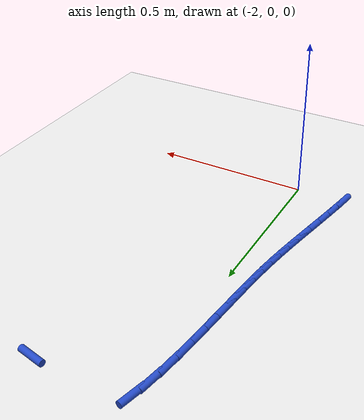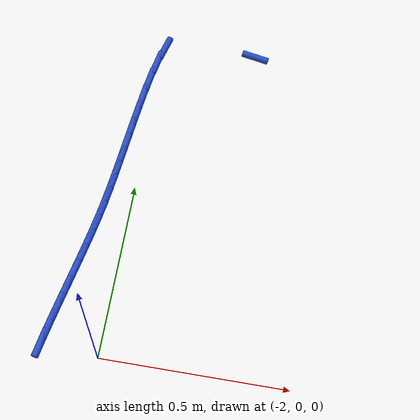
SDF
<sdf version="1.6">
 <world name="default">
  <model name="ground_plane">
   <static>1</static>
   <link name="link">
    <collision name="collision">
     <geometry><plane><normal>0 0 1</normal><size>100 100</size></plane></geometry>
     <surface><friction><ode><mu>100</mu><mu2>50</mu2></ode></friction></surface>
    </collision>
    <visual name="visual">
     <cast_shadows>0</cast_shadows>
     <geometry><plane><normal>0 0 1</normal><size>100 100</size></plane></geometry>
     <material>
      <script><uri>file://media/materials/scripts/gazebo.material</uri><name>Gazebo/WhiteGlow</name></script>
     </material>
    </visual>
   </link>
  </model>
  <model name="line">
   <link name="link_53">
    <pose>-1.7235238032963967 0.9941108134466412 0.01 0 1.57 -0.2016561543358557</pose>
    <collision name="collision">
     <geometry><cylinder><radius>0.01</radius><length>0.08</length></cylinder></geometry>
    </collision>
    <visual name="visual">
     <material>
      <script><name>Gazebo/Blue</name><uri>file://media/materials/scripts/gazebo.material</uri></script>
     </material>
     <geometry><cylinder><radius>0.01</radius><length>0.08</length></cylinder></geometry>
    </visual>
   </link>
   <link name="link_61">
    <pose>-2.0003115646295058 0.9791297774799423 0.01 0 1.57 1.3221051690939472</pose>
    <collision name="collision">
     <geometry><cylinder><radius>0.01</radius><length>0.08</length></cylinder></geometry>
    </collision>
    <visual name="visual">
     <material>
      <script><name>Gazebo/Blue</name><uri>file://media/materials/scripts/gazebo.material</uri></script>
     </material>
     <geometry><cylinder><radius>0.01</radius><length>0.08</length></cylinder></geometry>
    </visual>
   </link>
   <link name="link_62">
    <pose>-2.014659528403973 0.9226302105615845 0.01 0 1.57 1.392190156301244</pose>
    <collision name="collision">
     <geometry><cylinder><radius>0.01</radius><length>0.08</length></cylinder></geometry>
    </collision>
    <visual name="visual">
     <material>
      <script><name>Gazebo/Blue</name><uri>file://media/materials/scripts/gazebo.material</uri></script>
     </material>
     <geometry><cylinder><radius>0.01</radius><length>0.08</length></cylinder></geometry>
    </visual>
   </link>
   <link name="link_63">
    <pose>-2.025857746262438 0.8606005011400883 0.01 0 1.57 1.4341232548136582</pose>
    <collision name="collision">
     <geometry><cylinder><radius>0.01</radius><length>0.08</length></cylinder></geometry>
    </collision>
    <visual name="visual">
     <material>
      <script><name>Gazebo/Blue</name><uri>file://media/materials/scripts/gazebo.material</uri></script>
     </material>
     <geometry><cylinder><radius>0.01</radius><length>0.08</length></cylinder></geometry>
    </visual>
   </link>
   <link name="link_64">
    <pose>-2.034634516862617 0.7967835864212114 0.01 0 1.57 1.4567845629368146</pose>
    <collision name="collision">
     <geometry><cylinder><radius>0.01</radius><length>0.08</length></cylinder></geometry>
    </collision>
    <visual name="visual">
     <material>
      <script><name>Gazebo/Blue</name><uri>file://media/materials/scripts/gazebo.material</uri></script>
     </material>
     <geometry><cylinder><radius>0.01</radius><length>0.08</length></cylinder></geometry>
    </visual>
   </link>
   <link name="link_65">
    <pose>-2.04171813876377 0.7349224025535356 0.01 0 1.57 1.4651222404747108</pose>
    <collision name="collision">
     <geometry><cylinder><radius>0.01</radius><length>0.08</length></cylinder></geometry>
    </collision>
    <visual name="visual">
     <material>
      <script><name>Gazebo/Blue</name><uri>file://media/materials/scripts/gazebo.material</uri></script>
     </material>
     <geometry><cylinder><radius>0.01</radius><length>0.08</length></cylinder></geometry>
    </visual>
   </link>
   <link name="link_66">
    <pose>-2.0477613309545806 0.6779483530487364 0.01 0 1.57 1.4686022576897921</pose>
    <collision name="collision">
     <geometry><cylinder><radius>0.01</radius><length>0.08</length></cylinder></geometry>
    </collision>
    <visual name="visual">
     <material>
      <script><name>Gazebo/Blue</name><uri>file://media/materials/scripts/gazebo.material</uri></script>
     </material>
     <geometry><cylinder><radius>0.01</radius><length>0.08</length></cylinder></geometry>
    </visual>
   </link>
   <link name="link_67">
    <pose>-2.0531243432750554 0.6256524655521167 0.01 0 1.57 1.4688106715112843</pose>
    <collision name="collision">
     <geometry><cylinder><radius>0.01</radius><length>0.08</length></cylinder></geometry>
    </collision>
    <visual name="visual">
     <material>
      <script><name>Gazebo/Blue</name><uri>file://media/materials/scripts/gazebo.material</uri></script>
     </material>
     <geometry><cylinder><radius>0.01</radius><length>0.08</length></cylinder></geometry>
    </visual>
   </link>
   <link name="link_68">
    <pose>-2.058096690854146 0.5770662565587024 0.01 0 1.57 1.464939897385308</pose>
    <collision name="collision">
     <geometry><cylinder><radius>0.01</radius><length>0.08</length></cylinder></geometry>
    </collision>
    <visual name="visual">
     <material>
      <script><name>Gazebo/Blue</name><uri>file://media/materials/scripts/gazebo.material</uri></script>
     </material>
     <geometry><cylinder><radius>0.01</radius><length>0.08</length></cylinder></geometry>
    </visual>
   </link>
   <link name="link_69">
    <pose>-2.0629678888208005 0.5312212425635199 0.01 0 1.57 1.4564952796618205</pose>
    <collision name="collision">
     <geometry><cylinder><radius>0.01</radius><length>0.08</length></cylinder></geometry>
    </collision>
    <visual name="visual">
     <material>
      <script><name>Gazebo/Blue</name><uri>file://media/materials/scripts/gazebo.material</uri></script>
     </material>
     <geometry><cylinder><radius>0.01</radius><length>0.08</length></cylinder></geometry>
    </visual>
   </link>
   <link name="link_70">
    <pose>-2.0680274523039683 0.48714894006159476 0.01 0 1.57 1.4435083546158418</pose>
    <collision name="collision">
     <geometry><cylinder><radius>0.01</radius><length>0.08</length></cylinder></geometry>
    </collision>
    <visual name="visual">
     <material>
      <script><name>Gazebo/Blue</name><uri>file://media/materials/scripts/gazebo.material</uri></script>
     </material>
     <geometry><cylinder><radius>0.01</radius><length>0.08</length></cylinder></geometry>
    </visual>
   </link>
   <link name="link_71">
    <pose>-2.0735648964326003 0.44388086554795286 0.01 0 1.57 1.4266386286954926</pose>
    <collision name="collision">
     <geometry><cylinder><radius>0.01</radius><length>0.08</length></cylinder></geometry>
    </collision>
    <visual name="visual">
     <material>
      <script><name>Gazebo/Blue</name><uri>file://media/materials/scripts/gazebo.material</uri></script>
     </material>
     <geometry><cylinder><radius>0.01</radius><length>0.08</length></cylinder></geometry>
    </visual>
   </link>
   <link name="link_72">
    <pose>-2.0798697363356435 0.4004485355176209 0.01 0 1.57 1.407288552375491</pose>
    <collision name="collision">
     <geometry><cylinder><radius>0.01</radius><length>0.08</length></cylinder></geometry>
    </collision>
    <visual name="visual">
     <material>
      <script><name>Gazebo/Blue</name><uri>file://media/materials/scripts/gazebo.material</uri></script>
     </material>
     <geometry><cylinder><radius>0.01</radius><length>0.08</length></cylinder></geometry>
    </visual>
   </link>
   <link name="link_73">
    <pose>-2.0872170738382554 0.3559139926407003 0.01 0 1.57 1.3903331808201964</pose>
    <collision name="collision">
     <geometry><cylinder><radius>0.01</radius><length>0.08</length></cylinder></geometry>
    </collision>
    <visual name="visual">
     <material>
      <script><name>Gazebo/Blue</name><uri>file://media/materials/scripts/gazebo.material</uri></script>
     </material>
     <geometry><cylinder><radius>0.01</radius><length>0.08</length></cylinder></geometry>
    </visual>
   </link>
   <link name="link_74">
    <pose>-2.095609074090091 0.3099173366975593 0.01 0 1.57 1.3788032745397638</pose>
    <collision name="collision">
     <geometry><cylinder><radius>0.01</radius><length>0.08</length></cylinder></geometry>
    </collision>
    <visual name="visual">
     <material>
      <script><name>Gazebo/Blue</name><uri>file://media/materials/scripts/gazebo.material</uri></script>
     </material>
     <geometry><cylinder><radius>0.01</radius><length>0.08</length></cylinder></geometry>
    </visual>
   </link>
   <link name="link_75">
    <pose>-2.1048040124326817 0.262615205736841 0.01 0 1.57 1.3721897861753036</pose>
    <collision name="collision">
     <geometry><cylinder><radius>0.01</radius><length>0.08</length></cylinder></geometry>
    </collision>
    <visual name="visual">
     <material>
      <script><name>Gazebo/Blue</name><uri>file://media/materials/scripts/gazebo.material</uri></script>
     </material>
     <geometry><cylinder><radius>0.01</radius><length>0.08</length></cylinder></geometry>
    </visual>
   </link>
   <link name="link_76">
    <pose>-2.114551583345038 0.21418241135818591 0.01 0 1.57 1.3700511038913556</pose>
    <collision name="collision">
     <geometry><cylinder><radius>0.01</radius><length>0.08</length></cylinder></geometry>
    </collision>
    <visual name="visual">
     <material>
      <script><name>Gazebo/Blue</name><uri>file://media/materials/scripts/gazebo.material</uri></script>
     </material>
     <geometry><cylinder><radius>0.01</radius><length>0.08</length></cylinder></geometry>
    </visual>
   </link>
   <link name="link_77">
    <pose>-2.1246014813061684 0.16479376516123598 0.01 0 1.57 1.3720981787910185</pose>
    <collision name="collision">
     <geometry><cylinder><radius>0.01</radius><length>0.08</length></cylinder></geometry>
    </collision>
    <visual name="visual">
     <material>
      <script><name>Gazebo/Blue</name><uri>file://media/materials/scripts/gazebo.material</uri></script>
     </material>
     <geometry><cylinder><radius>0.01</radius><length>0.08</length></cylinder></geometry>
    </visual>
   </link>
   <link name="link_78">
    <pose>-2.134703400795085 0.11462407874563146 0.01 0 1.57 1.3781688036280386</pose>
    <collision name="collision">
     <geometry><cylinder><radius>0.01</radius><length>0.08</length></cylinder></geometry>
    </collision>
    <visual name="visual">
     <material>
      <script><name>Gazebo/Blue</name><uri>file://media/materials/scripts/gazebo.material</uri></script>
     </material>
     <geometry><cylinder><radius>0.01</radius><length>0.08</length></cylinder></geometry>
    </visual>
   </link>
   <link name="link_79">
    <pose>-2.144607036290797 0.06384816371101433 0.01 0 1.57 1.3882103243918478</pose>
    <collision name="collision">
     <geometry><cylinder><radius>0.01</radius><length>0.08</length></cylinder></geometry>
    </collision>
    <visual name="visual">
     <material>
      <script><name>Gazebo/Blue</name><uri>file://media/materials/scripts/gazebo.material</uri></script>
     </material>
     <geometry><cylinder><radius>0.01</radius><length>0.08</length></cylinder></geometry>
    </visual>
   </link>
   <link name="link_80">
    <pose>-2.154062082272316 0.012640831657025144 0.01 0 1.57 1.4022686581403312</pose>
    <collision name="collision">
     <geometry><cylinder><radius>0.01</radius><length>0.08</length></cylinder></geometry>
    </collision>
    <visual name="visual">
     <material>
      <script><name>Gazebo/Blue</name><uri>file://media/materials/scripts/gazebo.material</uri></script>
     </material>
     <geometry><cylinder><radius>0.01</radius><length>0.08</length></cylinder></geometry>
    </visual>
   </link>
  </model>
 </world>
</sdf>
